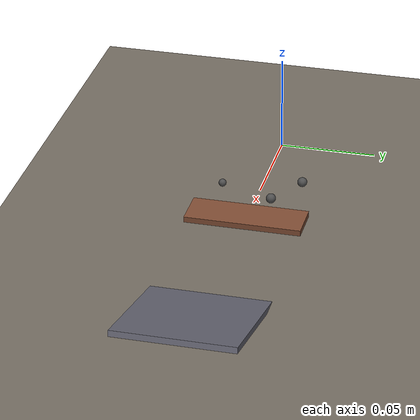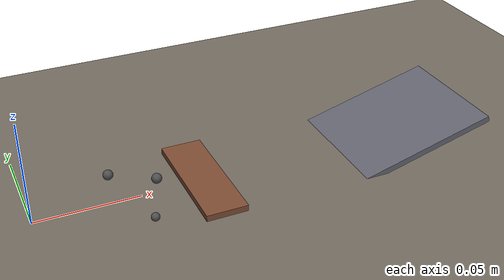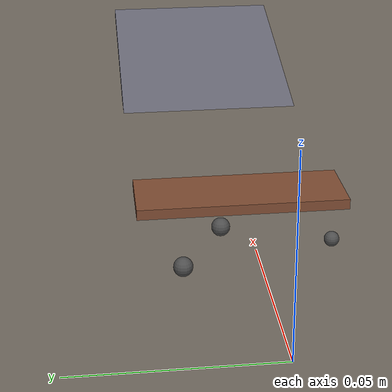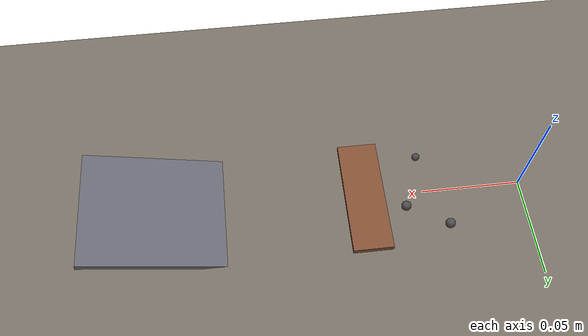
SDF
<?xml version="1.0" ?>
<sdf version="1.11">
  <world name="rocker_bogie_test">

    <!-- Fysikk: bruk samme backend som moon_arena (Bullet) for konsistent kontakt
         og tuning av rocker-bogie. -->
    <physics name="1ms" type="bullet">
      <max_step_size>0.001</max_step_size>
      <real_time_factor>1.0</real_time_factor>
      <real_time_update_rate>1000</real_time_update_rate>
    </physics>

    <plugin filename="gz-sim-physics-system"
            name="gz::sim::systems::Physics"/>
    <plugin filename="gz-sim-user-commands-system"
            name="gz::sim::systems::UserCommands"/>
    <plugin filename="gz-sim-scene-broadcaster-system"
            name="gz::sim::systems::SceneBroadcaster"/>
    <plugin filename="gz-sim-contact-system"
            name="gz::sim::systems::Contact"/>
    <plugin filename="gz-sim-sensors-system"
            name="gz::sim::systems::Sensors">
      <render_engine>ogre2</render_engine>
    </plugin>
    <plugin filename="gz-sim-imu-system"
            name="gz::sim::systems::Imu"/>

    <gravity>0 0 -9.81</gravity>

    <light type="directional" name="sun">
      <cast_shadows>true</cast_shadows>
      <pose>0 0 10 0 0 0</pose>
      <diffuse>0.9 0.9 0.9 1</diffuse>
      <specular>0.2 0.2 0.2 1</specular>
      <direction>-0.3 0.2 -1</direction>
    </light>

    <!-- Bakke -->
    <model name="ground_plane">
      <static>true</static>
      <link name="link">
        <collision name="collision">
          <geometry><plane><normal>0 0 1</normal><size>50 50</size></plane></geometry>
          <surface>
            <friction>
              <ode><mu>1.0</mu><mu2>1.0</mu2></ode>
            </friction>
          </surface>
        </collision>
        <visual name="visual">
          <geometry><plane><normal>0 0 1</normal><size>50 50</size></plane></geometry>
          <material>
            <ambient>0.35 0.32 0.28 1</ambient>
            <diffuse>0.45 0.42 0.38 1</diffuse>
          </material>
        </visual>
      </link>
    </model>

    <!-- Skalert ned for en ~5cm rover med ~7mm hjul.
         Hinderhoeyde ~3mm = mindre enn hjulradius men stor nok til
         aa utfordre rocker-bogien. -->
    <model name="step_obstacle">
      <static>true</static>
      <pose>0.08 0.0 0.0015 0 0 0</pose>
      <link name="link">
        <collision name="c"><geometry><box><size>0.02 0.06 0.003</size></box></geometry></collision>
        <visual    name="v"><geometry><box><size>0.02 0.06 0.003</size></box></geometry>
          <material><diffuse>0.5 0.3 0.2 1</diffuse></material>
        </visual>
      </link>
    </model>

    <!-- Rampe, 15 grader -->
    <model name="ramp">
      <static>true</static>
      <pose>0.18 0.0 0.006 0 -0.2618 0</pose>
      <link name="link">
        <collision name="c"><geometry><box><size>0.08 0.06 0.003</size></box></geometry></collision>
        <visual    name="v"><geometry><box><size>0.08 0.06 0.003</size></box></geometry>
          <material><diffuse>0.4 0.4 0.45 1</diffuse></material>
        </visual>
      </link>
    </model>

    <!-- Smaa steiner for ujevn kontakt -->
    <model name="rock_1">
      <static>true</static>
      <pose>0.04 0.02 0.0020 0 0 0.3</pose>
      <link name="link">
        <collision name="c"><geometry><sphere><radius>0.0025</radius></sphere></geometry></collision>
        <visual    name="v"><geometry><sphere><radius>0.0025</radius></sphere></geometry>
          <material><diffuse>0.3 0.3 0.3 1</diffuse></material>
        </visual>
      </link>
    </model>

    <model name="rock_2">
      <static>true</static>
      <pose>0.05 -0.02 0.0020 0 0 0</pose>
      <link name="link">
        <collision name="c"><geometry><sphere><radius>0.002</radius></sphere></geometry></collision>
        <visual    name="v"><geometry><sphere><radius>0.002</radius></sphere></geometry>
          <material><diffuse>0.3 0.3 0.3 1</diffuse></material>
        </visual>
      </link>
    </model>

    <model name="rock_3">
      <static>true</static>
      <pose>0.06 0.008 0.0020 0 0 0</pose>
      <link name="link">
        <collision name="c"><geometry><sphere><radius>0.0025</radius></sphere></geometry></collision>
        <visual    name="v"><geometry><sphere><radius>0.0025</radius></sphere></geometry>
          <material><diffuse>0.3 0.3 0.3 1</diffuse></material>
        </visual>
      </link>
    </model>

  </world>
</sdf>
